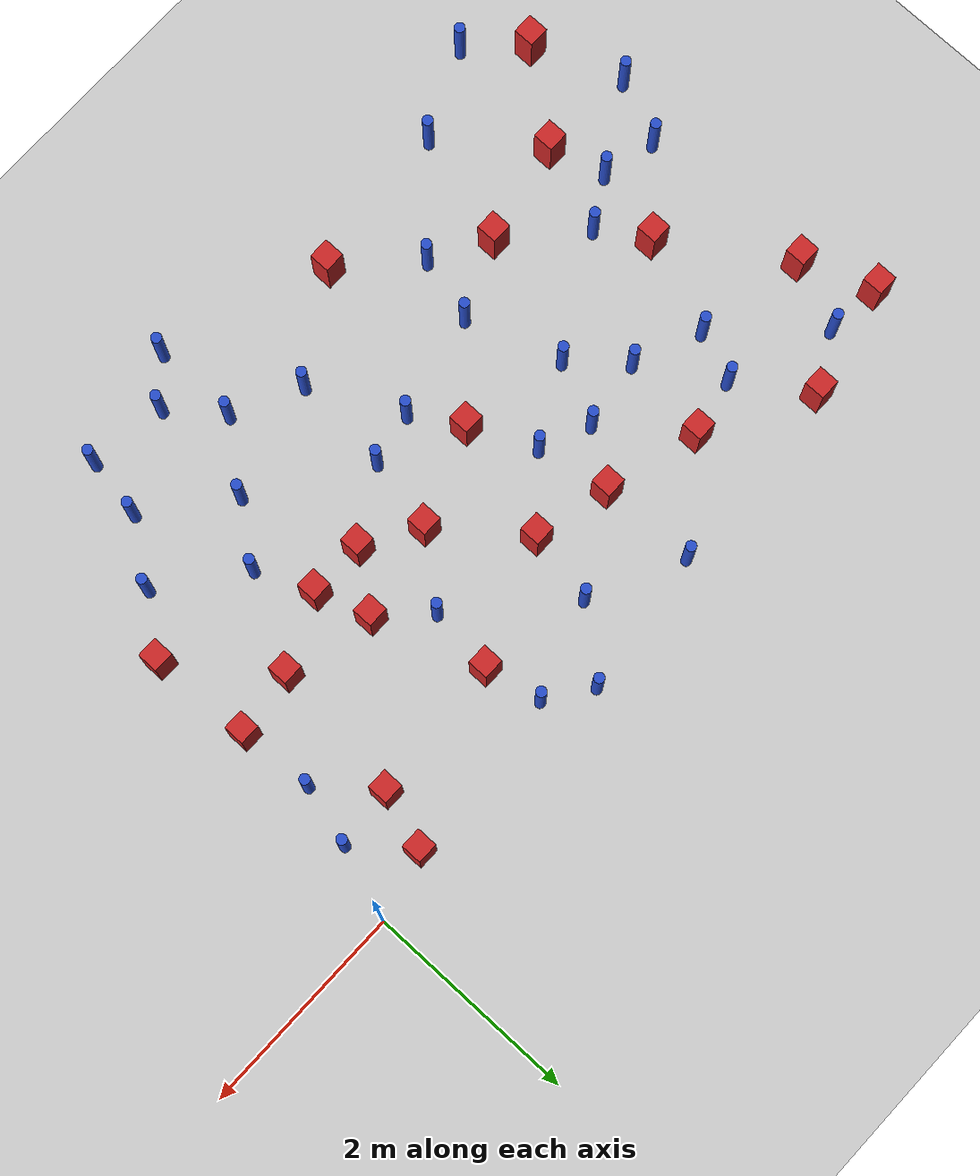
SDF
<sdf version="1.6">
 <world name="default">
  <model name="ground_plane">
   <static>1</static>
   <link name="link">
    <collision name="collision">
     <geometry><plane><normal>0 0 1</normal><size>100 100</size></plane></geometry>
     <surface><friction><ode><mu>100</mu><mu2>50</mu2></ode></friction></surface>
    </collision>
    <visual name="visual">
     <cast_shadows>0</cast_shadows>
     <geometry><plane><normal>0 0 1</normal><size>100 100</size></plane></geometry>
     <material>
      <ambient>1.0 1.0 1.0 1.0</ambient>
      <diffuse>0.8 0.8 0.8 1.0</diffuse>
      <specular>0.01 0.01 0.01 1.000000</specular>
     </material>
    </visual>
   </link>
  </model>
  <model name="square_post_obstacle19">
   <static>true</static>
   <pose>-4.93362820988 -0.872511746495 -6.11067671241e-07 -5.50515727128e-06 -8.79689657224e-07 2.37013304536e-05</pose>
   <link name="link">
    <pose>0 0 0.25 0 -0 0</pose>
    <inertial>
     <mass>100</mass>
     <inertia>
      <ixx>0.166667</ixx>
      <ixy>0</ixy>
      <ixz>0</ixz>
      <iyy>0.166667</iyy>
      <iyz>0</iyz>
      <izz>0.166667</izz>
     </inertia>
    </inertial>
    <collision name="collision"><geometry><box><size>.2 .2 .5</size></box></geometry></collision>
    <visual name="visual">
     <geometry><box><size>.2 .2 .5</size></box></geometry>
     <material>
      <script><name>Gazebo/Red</name><uri>file://media/materials/scripts/gazebo.material</uri></script>
     </material>
    </visual>
   </link>
  </model>
  <model name="pole_obstacle13">
   <static>true</static>
   <pose>-0.396146122416 -1.24049954833 -9.47619616065e-06 5.49618799738e-07 2.3631041406e-07 -1.550905348e-07</pose>
   <link name="link">
    <pose>0 0 0.3 0 -0 0</pose>
    <inertial>
     <mass>1</mass>
     <inertia><ixx>0.145833</ixx><ixy>0</ixy><ixz>0</ixz><iyy>0.145833</iyy><iyz>0</iyz><izz>0.125</izz></inertia>
    </inertial>
    <collision name="collision">
     <geometry><cylinder><radius>0.05</radius><length>.6</length></cylinder></geometry>
    </collision>
    <visual name="visual">
     <geometry><cylinder><radius>0.05</radius><length>.6</length></cylinder></geometry>
     <material>
      <script><name>Gazebo/Blue</name><uri>file://media/materials/scripts/gazebo.material</uri></script>
     </material>
    </visual>
   </link>
  </model>
  <model name="pole_obstacle14">
   <static>true</static>
   <pose>-0.698512760537 -3.43095846177 -9.47619616065e-06 5.49618799737e-07 2.36310414066e-07 -1.55090534797e-07</pose>
   <link name="link">
    <pose>0 0 0.3 0 -0 0</pose>
    <inertial>
     <mass>1</mass>
     <inertia><ixx>0.145833</ixx><ixy>0</ixy><ixz>0</ixz><iyy>0.145833</iyy><iyz>0</iyz><izz>0.125</izz></inertia>
    </inertial>
    <collision name="collision">
     <geometry><cylinder><radius>0.05</radius><length>.6</length></cylinder></geometry>
    </collision>
    <visual name="visual">
     <geometry><cylinder><radius>0.05</radius><length>.6</length></cylinder></geometry>
     <material>
      <script><name>Gazebo/Blue</name><uri>file://media/materials/scripts/gazebo.material</uri></script>
     </material>
    </visual>
   </link>
  </model>
  <model name="pole_obstacle15">
   <static>true</static>
   <pose>-5.48142437463 -0.9869373852 -9.47619616065e-06 5.49618799738e-07 2.36310414063e-07 -1.55090534799e-07</pose>
   <link name="link">
    <pose>0 0 0.3 0 -0 0</pose>
    <inertial>
     <mass>1</mass>
     <inertia><ixx>0.145833</ixx><ixy>0</ixy><ixz>0</ixz><iyy>0.145833</iyy><iyz>0</iyz><izz>0.125</izz></inertia>
    </inertial>
    <collision name="collision">
     <geometry><cylinder><radius>0.05</radius><length>.6</length></cylinder></geometry>
    </collision>
    <visual name="visual">
     <geometry><cylinder><radius>0.05</radius><length>.6</length></cylinder></geometry>
     <material>
      <script><name>Gazebo/Blue</name><uri>file://media/materials/scripts/gazebo.material</uri></script>
     </material>
    </visual>
   </link>
  </model>
  <model name="square_post_obstacle30">
   <static>true</static>
   <pose>-2.16073642551 -0.819398530157 -6.11067671241e-07 -5.50515727128e-06 -8.79689657224e-07 2.37013304536e-05</pose>
   <link name="link">
    <pose>0 0 0.25 0 -0 0</pose>
    <inertial>
     <mass>100</mass>
     <inertia>
      <ixx>0.166667</ixx>
      <ixy>0</ixy>
      <ixz>0</ixz>
      <iyy>0.166667</iyy>
      <iyz>0</iyz>
      <izz>0.166667</izz>
     </inertia>
    </inertial>
    <collision name="collision"><geometry><box><size>.2 .2 .5</size></box></geometry></collision>
    <visual name="visual">
     <geometry><box><size>.2 .2 .5</size></box></geometry>
     <material>
      <script><name>Gazebo/Red</name><uri>file://media/materials/scripts/gazebo.material</uri></script>
     </material>
    </visual>
   </link>
  </model>
  <model name="pole_obstacle24">
   <static>true</static>
   <pose>-3.35250689096 -2.85249493824 -9.47619616065e-06 5.49618799737e-07 2.36310414051e-07 -1.55090534807e-07</pose>
   <link name="link">
    <pose>0 0 0.3 0 -0 0</pose>
    <inertial>
     <mass>1</mass>
     <inertia><ixx>0.145833</ixx><ixy>0</ixy><ixz>0</ixz><iyy>0.145833</iyy><iyz>0</iyz><izz>0.125</izz></inertia>
    </inertial>
    <collision name="collision">
     <geometry><cylinder><radius>0.05</radius><length>.6</length></cylinder></geometry>
    </collision>
    <visual name="visual">
     <geometry><cylinder><radius>0.05</radius><length>.6</length></cylinder></geometry>
     <material>
      <script><name>Gazebo/Blue</name><uri>file://media/materials/scripts/gazebo.material</uri></script>
     </material>
    </visual>
   </link>
  </model>
  <model name="pole_obstacle29">
   <static>true</static>
   <pose>-5.66671919872 -1.45315627058 -9.47619616065e-06 5.49618799738e-07 2.36310414071e-07 -1.55090534796e-07</pose>
   <link name="link">
    <pose>0 0 0.3 0 -0 0</pose>
    <inertial>
     <mass>1</mass>
     <inertia><ixx>0.145833</ixx><ixy>0</ixy><ixz>0</ixz><iyy>0.145833</iyy><iyz>0</iyz><izz>0.125</izz></inertia>
    </inertial>
    <collision name="collision">
     <geometry><cylinder><radius>0.05</radius><length>.6</length></cylinder></geometry>
    </collision>
    <visual name="visual">
     <geometry><cylinder><radius>0.05</radius><length>.6</length></cylinder></geometry>
     <material>
      <script><name>Gazebo/Blue</name><uri>file://media/materials/scripts/gazebo.material</uri></script>
     </material>
    </visual>
   </link>
  </model>
  <model name="square_post_obstacle36">
   <static>true</static>
   <pose>-0.362242348549 -1.94912138401 -6.11067671241e-07 -5.50515727128e-06 -8.79689657224e-07 2.37013304536e-05</pose>
   <link name="link">
    <pose>0 0 0.25 0 -0 0</pose>
    <inertial>
     <mass>100</mass>
     <inertia>
      <ixx>0.166667</ixx>
      <ixy>0</ixy>
      <ixz>0</ixz>
      <iyy>0.166667</iyy>
      <iyz>0</iyz>
      <izz>0.166667</izz>
     </inertia>
    </inertial>
    <collision name="collision"><geometry><box><size>.2 .2 .5</size></box></geometry></collision>
    <visual name="visual">
     <geometry><box><size>.2 .2 .5</size></box></geometry>
     <material>
      <script><name>Gazebo/Red</name><uri>file://media/materials/scripts/gazebo.material</uri></script>
     </material>
    </visual>
   </link>
  </model>
  <model name="pole_obstacle42">
   <static>true</static>
   <pose>-3.90662161664 -1.79307997855 -9.47619616065e-06 5.49618799737e-07 2.36310414072e-07 -1.55090534793e-07</pose>
   <link name="link">
    <pose>0 0 0.3 0 -0 0</pose>
    <inertial>
     <mass>1</mass>
     <inertia><ixx>0.145833</ixx><ixy>0</ixy><ixz>0</ixz><iyy>0.145833</iyy><iyz>0</iyz><izz>0.125</izz></inertia>
    </inertial>
    <collision name="collision">
     <geometry><cylinder><radius>0.05</radius><length>.6</length></cylinder></geometry>
    </collision>
    <visual name="visual">
     <geometry><cylinder><radius>0.05</radius><length>.6</length></cylinder></geometry>
     <material>
      <script><name>Gazebo/Blue</name><uri>file://media/materials/scripts/gazebo.material</uri></script>
     </material>
    </visual>
   </link>
  </model>
  <model name="square_post_obstacle40">
   <static>true</static>
   <pose>-3.30761113644 -1.27494614513 -6.11067671241e-07 -5.50515727128e-06 -8.79689657224e-07 2.37013304536e-05</pose>
   <link name="link">
    <pose>0 0 0.25 0 -0 0</pose>
    <inertial>
     <mass>100</mass>
     <inertia>
      <ixx>0.166667</ixx>
      <ixy>0</ixy>
      <ixz>0</ixz>
      <iyy>0.166667</iyy>
      <iyz>0</iyz>
      <izz>0.166667</izz>
     </inertia>
    </inertial>
    <collision name="collision"><geometry><box><size>.2 .2 .5</size></box></geometry></collision>
    <visual name="visual">
     <geometry><box><size>.2 .2 .5</size></box></geometry>
     <material>
      <script><name>Gazebo/Red</name><uri>file://media/materials/scripts/gazebo.material</uri></script>
     </material>
    </visual>
   </link>
  </model>
  <model name="square_post_obstacle42">
   <static>true</static>
   <pose>-6.01508320525 -3.59150461057 -6.11067671241e-07 -5.50515727128e-06 -8.79689657224e-07 2.37013304536e-05</pose>
   <link name="link">
    <pose>0 0 0.25 0 -0 0</pose>
    <inertial>
     <mass>100</mass>
     <inertia>
      <ixx>0.166667</ixx>
      <ixy>0</ixy>
      <ixz>0</ixz>
      <iyy>0.166667</iyy>
      <iyz>0</iyz>
      <izz>0.166667</izz>
     </inertia>
    </inertial>
    <collision name="collision"><geometry><box><size>.2 .2 .5</size></box></geometry></collision>
    <visual name="visual">
     <geometry><box><size>.2 .2 .5</size></box></geometry>
     <material>
      <script><name>Gazebo/Red</name><uri>file://media/materials/scripts/gazebo.material</uri></script>
     </material>
    </visual>
   </link>
  </model>
  <model name="pole_obstacle47">
   <static>true</static>
   <pose>-1.09407281129 -3.99064784551 -9.47619616065e-06 5.49618799737e-07 2.36310414067e-07 -1.55090534795e-07</pose>
   <link name="link">
    <pose>0 0 0.3 0 -0 0</pose>
    <inertial>
     <mass>1</mass>
     <inertia><ixx>0.145833</ixx><ixy>0</ixy><ixz>0</ixz><iyy>0.145833</iyy><iyz>0</iyz><izz>0.125</izz></inertia>
    </inertial>
    <collision name="collision">
     <geometry><cylinder><radius>0.05</radius><length>.6</length></cylinder></geometry>
    </collision>
    <visual name="visual">
     <geometry><cylinder><radius>0.05</radius><length>.6</length></cylinder></geometry>
     <material>
      <script><name>Gazebo/Blue</name><uri>file://media/materials/scripts/gazebo.material</uri></script>
     </material>
    </visual>
   </link>
  </model>
  <model name="pole_obstacle49">
   <static>true</static>
   <pose>-2.86092002899 -2.74612797711 -9.47619616065e-06 5.49618799737e-07 2.36310414051e-07 -1.55090534807e-07</pose>
   <link name="link">
    <pose>0 0 0.3 0 -0 0</pose>
    <inertial>
     <mass>1</mass>
     <inertia><ixx>0.145833</ixx><ixy>0</ixy><ixz>0</ixz><iyy>0.145833</iyy><iyz>0</iyz><izz>0.125</izz></inertia>
    </inertial>
    <collision name="collision">
     <geometry><cylinder><radius>0.05</radius><length>.6</length></cylinder></geometry>
    </collision>
    <visual name="visual">
     <geometry><cylinder><radius>0.05</radius><length>.6</length></cylinder></geometry>
     <material>
      <script><name>Gazebo/Blue</name><uri>file://media/materials/scripts/gazebo.material</uri></script>
     </material>
    </visual>
   </link>
  </model>
  <model name="pole_obstacle50">
   <static>true</static>
   <pose>-2.30832612158 -4.81870005928 -9.47619616065e-06 5.49618799738e-07 2.3631041406e-07 -1.55090534801e-07</pose>
   <link name="link">
    <pose>0 0 0.3 0 -0 0</pose>
    <inertial>
     <mass>1</mass>
     <inertia><ixx>0.145833</ixx><ixy>0</ixy><ixz>0</ixz><iyy>0.145833</iyy><iyz>0</iyz><izz>0.125</izz></inertia>
    </inertial>
    <collision name="collision">
     <geometry><cylinder><radius>0.05</radius><length>.6</length></cylinder></geometry>
    </collision>
    <visual name="visual">
     <geometry><cylinder><radius>0.05</radius><length>.6</length></cylinder></geometry>
     <material>
      <script><name>Gazebo/Blue</name><uri>file://media/materials/scripts/gazebo.material</uri></script>
     </material>
    </visual>
   </link>
  </model>
  <model name="pole_obstacle52">
   <static>true</static>
   <pose>-4.63186885841 -2.17984591372 -9.47619616065e-06 5.49618799738e-07 2.36310414051e-07 -1.55090534805e-07</pose>
   <link name="link">
    <pose>0 0 0.3 0 -0 0</pose>
    <inertial>
     <mass>1</mass>
     <inertia><ixx>0.145833</ixx><ixy>0</ixy><ixz>0</ixz><iyy>0.145833</iyy><iyz>0</iyz><izz>0.125</izz></inertia>
    </inertial>
    <collision name="collision">
     <geometry><cylinder><radius>0.05</radius><length>.6</length></cylinder></geometry>
    </collision>
    <visual name="visual">
     <geometry><cylinder><radius>0.05</radius><length>.6</length></cylinder></geometry>
     <material>
      <script><name>Gazebo/Blue</name><uri>file://media/materials/scripts/gazebo.material</uri></script>
     </material>
    </visual>
   </link>
  </model>
  <model name="square_post_obstacle57">
   <static>true</static>
   <pose>-6.72206157524 -1.25438495782 -6.11067671241e-07 -5.50515727128e-06 -8.79689657224e-07 2.37013304536e-05</pose>
   <link name="link">
    <pose>0 0 0.25 0 -0 0</pose>
    <inertial>
     <mass>100</mass>
     <inertia>
      <ixx>0.166667</ixx>
      <ixy>0</ixy>
      <ixz>0</ixz>
      <iyy>0.166667</iyy>
      <iyz>0</iyz>
      <izz>0.166667</izz>
     </inertia>
    </inertial>
    <collision name="collision"><geometry><box><size>.2 .2 .5</size></box></geometry></collision>
    <visual name="visual">
     <geometry><box><size>.2 .2 .5</size></box></geometry>
     <material>
      <script><name>Gazebo/Red</name><uri>file://media/materials/scripts/gazebo.material</uri></script>
     </material>
    </visual>
   </link>
  </model>
  <model name="square_post_obstacle58">
   <static>true</static>
   <pose>-5.997366483 -2.3497886294 -6.11067671241e-07 -5.50515727128e-06 -8.79689657224e-07 2.37013304536e-05</pose>
   <link name="link">
    <pose>0 0 0.25 0 -0 0</pose>
    <inertial>
     <mass>100</mass>
     <inertia>
      <ixx>0.166667</ixx>
      <ixy>0</ixy>
      <ixz>0</ixz>
      <iyy>0.166667</iyy>
      <iyz>0</iyz>
      <izz>0.166667</izz>
     </inertia>
    </inertial>
    <collision name="collision"><geometry><box><size>.2 .2 .5</size></box></geometry></collision>
    <visual name="visual">
     <geometry><box><size>.2 .2 .5</size></box></geometry>
     <material>
      <script><name>Gazebo/Red</name><uri>file://media/materials/scripts/gazebo.material</uri></script>
     </material>
    </visual>
   </link>
  </model>
  <model name="pole_obstacle57">
   <static>true</static>
   <pose>-2.9355474856 -3.6898126294 -9.47619616065e-06 5.49618799737e-07 2.36310414051e-07 -1.55090534807e-07</pose>
   <link name="link">
    <pose>0 0 0.3 0 -0 0</pose>
    <inertial>
     <mass>1</mass>
     <inertia><ixx>0.145833</ixx><ixy>0</ixy><ixz>0</ixz><iyy>0.145833</iyy><iyz>0</iyz><izz>0.125</izz></inertia>
    </inertial>
    <collision name="collision">
     <geometry><cylinder><radius>0.05</radius><length>.6</length></cylinder></geometry>
    </collision>
    <visual name="visual">
     <geometry><cylinder><radius>0.05</radius><length>.6</length></cylinder></geometry>
     <material>
      <script><name>Gazebo/Blue</name><uri>file://media/materials/scripts/gazebo.material</uri></script>
     </material>
    </visual>
   </link>
  </model>
  <model name="pole_obstacle60">
   <static>true</static>
   <pose>-4.05939755529 -0.19430048013 -9.47619616065e-06 5.49618799738e-07 2.36310414072e-07 -1.55090534795e-07</pose>
   <link name="link">
    <pose>0 0 0.3 0 -0 0</pose>
    <inertial>
     <mass>1</mass>
     <inertia><ixx>0.145833</ixx><ixy>0</ixy><ixz>0</ixz><iyy>0.145833</iyy><iyz>0</iyz><izz>0.125</izz></inertia>
    </inertial>
    <collision name="collision">
     <geometry><cylinder><radius>0.05</radius><length>.6</length></cylinder></geometry>
    </collision>
    <visual name="visual">
     <geometry><cylinder><radius>0.05</radius><length>.6</length></cylinder></geometry>
     <material>
      <script><name>Gazebo/Blue</name><uri>file://media/materials/scripts/gazebo.material</uri></script>
     </material>
    </visual>
   </link>
  </model>
  <model name="pole_obstacle76">
   <static>true</static>
   <pose>-2.69109121535 -0.00879763315694 -9.47619616065e-06 5.49618799738e-07 2.36310414071e-07 -1.55090534795e-07</pose>
   <link name="link">
    <pose>0 0 0.3 0 -0 0</pose>
    <inertial>
     <mass>1</mass>
     <inertia><ixx>0.145833</ixx><ixy>0</ixy><ixz>0</ixz><iyy>0.145833</iyy><iyz>0</iyz><izz>0.125</izz></inertia>
    </inertial>
    <collision name="collision">
     <geometry><cylinder><radius>0.05</radius><length>.6</length></cylinder></geometry>
    </collision>
    <visual name="visual">
     <geometry><cylinder><radius>0.05</radius><length>.6</length></cylinder></geometry>
     <material>
      <script><name>Gazebo/Blue</name><uri>file://media/materials/scripts/gazebo.material</uri></script>
     </material>
    </visual>
   </link>
  </model>
  <model name="pole_obstacle80">
   <static>true</static>
   <pose>-6.46013460716 -0.627744825493 -9.47619616065e-06 5.49618799737e-07 2.36310414061e-07 -1.550905348e-07</pose>
   <link name="link">
    <pose>0 0 0.3 0 -0 0</pose>
    <inertial>
     <mass>1</mass>
     <inertia><ixx>0.145833</ixx><ixy>0</ixy><ixz>0</ixz><iyy>0.145833</iyy><iyz>0</iyz><izz>0.125</izz></inertia>
    </inertial>
    <collision name="collision">
     <geometry><cylinder><radius>0.05</radius><length>.6</length></cylinder></geometry>
    </collision>
    <visual name="visual">
     <geometry><cylinder><radius>0.05</radius><length>.6</length></cylinder></geometry>
     <material>
      <script><name>Gazebo/Blue</name><uri>file://media/materials/scripts/gazebo.material</uri></script>
     </material>
    </visual>
   </link>
  </model>
  <model name="pole_obstacle81">
   <static>true</static>
   <pose>-6.18446554364 -4.83628113966 -9.47619616065e-06 5.49618799737e-07 2.36310414037e-07 -1.55090534814e-07</pose>
   <link name="link">
    <pose>0 0 0.3 0 -0 0</pose>
    <inertial>
     <mass>1</mass>
     <inertia><ixx>0.145833</ixx><ixy>0</ixy><ixz>0</ixz><iyy>0.145833</iyy><iyz>0</iyz><izz>0.125</izz></inertia>
    </inertial>
    <collision name="collision">
     <geometry><cylinder><radius>0.05</radius><length>.6</length></cylinder></geometry>
    </collision>
    <visual name="visual">
     <geometry><cylinder><radius>0.05</radius><length>.6</length></cylinder></geometry>
     <material>
      <script><name>Gazebo/Blue</name><uri>file://media/materials/scripts/gazebo.material</uri></script>
     </material>
    </visual>
   </link>
  </model>
  <model name="pole_obstacle96">
   <static>true</static>
   <pose>-1.43814285354 -2.88085548472 -9.47619616065e-06 5.49618799737e-07 2.36310414062e-07 -1.55090534798e-07</pose>
   <link name="link">
    <pose>0 0 0.3 0 -0 0</pose>
    <inertial>
     <mass>1</mass>
     <inertia><ixx>0.145833</ixx><ixy>0</ixy><ixz>0</ixz><iyy>0.145833</iyy><iyz>0</iyz><izz>0.125</izz></inertia>
    </inertial>
    <collision name="collision">
     <geometry><cylinder><radius>0.05</radius><length>.6</length></cylinder></geometry>
    </collision>
    <visual name="visual">
     <geometry><cylinder><radius>0.05</radius><length>.6</length></cylinder></geometry>
     <material>
      <script><name>Gazebo/Blue</name><uri>file://media/materials/scripts/gazebo.material</uri></script>
     </material>
    </visual>
   </link>
  </model>
  <model name="square_post_obstacle84">
   <static>true</static>
   <pose>-5.92736534509 -0.337526868708 -6.11067671241e-07 -5.50515727128e-06 -8.79689657224e-07 2.37013304536e-05</pose>
   <link name="link">
    <pose>0 0 0.25 0 -0 0</pose>
    <inertial>
     <mass>100</mass>
     <inertia>
      <ixx>0.166667</ixx>
      <ixy>0</ixy>
      <ixz>0</ixz>
      <iyy>0.166667</iyy>
      <iyz>0</iyz>
      <izz>0.166667</izz>
     </inertia>
    </inertial>
    <collision name="collision"><geometry><box><size>.2 .2 .5</size></box></geometry></collision>
    <visual name="visual">
     <geometry><box><size>.2 .2 .5</size></box></geometry>
     <material>
      <script><name>Gazebo/Red</name><uri>file://media/materials/scripts/gazebo.material</uri></script>
     </material>
    </visual>
   </link>
  </model>
  <model name="square_post_obstacle92">
   <static>true</static>
   <pose>-2.19716612827 -2.34406139069 -6.11067671241e-07 -5.50515727128e-06 -8.79689657224e-07 2.37013304536e-05</pose>
   <link name="link">
    <pose>0 0 0.25 0 -0 0</pose>
    <inertial>
     <mass>100</mass>
     <inertia>
      <ixx>0.166667</ixx>
      <ixy>0</ixy>
      <ixz>0</ixz>
      <iyy>0.166667</iyy>
      <iyz>0</iyz>
      <izz>0.166667</izz>
     </inertia>
    </inertial>
    <collision name="collision"><geometry><box><size>.2 .2 .5</size></box></geometry></collision>
    <visual name="visual">
     <geometry><box><size>.2 .2 .5</size></box></geometry>
     <material>
      <script><name>Gazebo/Red</name><uri>file://media/materials/scripts/gazebo.material</uri></script>
     </material>
    </visual>
   </link>
  </model>
  <model name="pole_obstacle108">
   <static>true</static>
   <pose>-5.72134854834 -2.79830093828 -9.47619616065e-06 5.49618799738e-07 2.36310414051e-07 -1.55090534805e-07</pose>
   <link name="link">
    <pose>0 0 0.3 0 -0 0</pose>
    <inertial>
     <mass>1</mass>
     <inertia><ixx>0.145833</ixx><ixy>0</ixy><ixz>0</ixz><iyy>0.145833</iyy><iyz>0</iyz><izz>0.125</izz></inertia>
    </inertial>
    <collision name="collision">
     <geometry><cylinder><radius>0.05</radius><length>.6</length></cylinder></geometry>
    </collision>
    <visual name="visual">
     <geometry><cylinder><radius>0.05</radius><length>.6</length></cylinder></geometry>
     <material>
      <script><name>Gazebo/Blue</name><uri>file://media/materials/scripts/gazebo.material</uri></script>
     </material>
    </visual>
   </link>
  </model>
  <model name="square_post_obstacle99">
   <static>true</static>
   <pose>-0.644150187044 -0.172655602866 -6.11067671241e-07 -5.50515727128e-06 -8.79689657224e-07 2.37013304536e-05</pose>
   <link name="link">
    <pose>0 0 0.25 0 -0 0</pose>
    <inertial>
     <mass>100</mass>
     <inertia>
      <ixx>0.166667</ixx>
      <ixy>0</ixy>
      <ixz>0</ixz>
      <iyy>0.166667</iyy>
      <iyz>0</iyz>
      <izz>0.166667</izz>
     </inertia>
    </inertial>
    <collision name="collision"><geometry><box><size>.2 .2 .5</size></box></geometry></collision>
    <visual name="visual">
     <geometry><box><size>.2 .2 .5</size></box></geometry>
     <material>
      <script><name>Gazebo/Red</name><uri>file://media/materials/scripts/gazebo.material</uri></script>
     </material>
    </visual>
   </link>
  </model>
  <model name="square_post_obstacle110">
   <static>true</static>
   <pose>-0.314955461651 -2.91150345609 -6.11067671241e-07 -5.50515727128e-06 -8.79689657224e-07 2.37013304536e-05</pose>
   <link name="link">
    <pose>0 0 0.25 0 -0 0</pose>
    <inertial>
     <mass>100</mass>
     <inertia>
      <ixx>0.166667</ixx>
      <ixy>0</ixy>
      <ixz>0</ixz>
      <iyy>0.166667</iyy>
      <iyz>0</iyz>
      <izz>0.166667</izz>
     </inertia>
    </inertial>
    <collision name="collision"><geometry><box><size>.2 .2 .5</size></box></geometry></collision>
    <visual name="visual">
     <geometry><box><size>.2 .2 .5</size></box></geometry>
     <material>
      <script><name>Gazebo/Red</name><uri>file://media/materials/scripts/gazebo.material</uri></script>
     </material>
    </visual>
   </link>
  </model>
  <model name="pole_obstacle120">
   <static>true</static>
   <pose>-4.5109446323 -3.68251824588 -9.47619616065e-06 5.49618799738e-07 2.36310414051e-07 -1.55090534805e-07</pose>
   <link name="link">
    <pose>0 0 0.3 0 -0 0</pose>
    <inertial>
     <mass>1</mass>
     <inertia><ixx>0.145833</ixx><ixy>0</ixy><ixz>0</ixz><iyy>0.145833</iyy><iyz>0</iyz><izz>0.125</izz></inertia>
    </inertial>
    <collision name="collision">
     <geometry><cylinder><radius>0.05</radius><length>.6</length></cylinder></geometry>
    </collision>
    <visual name="visual">
     <geometry><cylinder><radius>0.05</radius><length>.6</length></cylinder></geometry>
     <material>
      <script><name>Gazebo/Blue</name><uri>file://media/materials/scripts/gazebo.material</uri></script>
     </material>
    </visual>
   </link>
  </model>
  <model name="pole_obstacle123">
   <static>true</static>
   <pose>-1.8360350835 -3.40844959307 -9.47619616065e-06 5.49618799737e-07 2.36310414062e-07 -1.55090534798e-07</pose>
   <link name="link">
    <pose>0 0 0.3 0 -0 0</pose>
    <inertial>
     <mass>1</mass>
     <inertia><ixx>0.145833</ixx><ixy>0</ixy><ixz>0</ixz><iyy>0.145833</iyy><iyz>0</iyz><izz>0.125</izz></inertia>
    </inertial>
    <collision name="collision">
     <geometry><cylinder><radius>0.05</radius><length>.6</length></cylinder></geometry>
    </collision>
    <visual name="visual">
     <geometry><cylinder><radius>0.05</radius><length>.6</length></cylinder></geometry>
     <material>
      <script><name>Gazebo/Blue</name><uri>file://media/materials/scripts/gazebo.material</uri></script>
     </material>
    </visual>
   </link>
  </model>
  <model name="pole_obstacle125">
   <static>true</static>
   <pose>-2.23624089737 -1.45191084861 -9.47619616065e-06 5.49618799737e-07 2.36310414072e-07 -1.55090534793e-07</pose>
   <link name="link">
    <pose>0 0 0.3 0 -0 0</pose>
    <inertial>
     <mass>1</mass>
     <inertia><ixx>0.145833</ixx><ixy>0</ixy><ixz>0</ixz><iyy>0.145833</iyy><iyz>0</iyz><izz>0.125</izz></inertia>
    </inertial>
    <collision name="collision">
     <geometry><cylinder><radius>0.05</radius><length>.6</length></cylinder></geometry>
    </collision>
    <visual name="visual">
     <geometry><cylinder><radius>0.05</radius><length>.6</length></cylinder></geometry>
     <material>
      <script><name>Gazebo/Blue</name><uri>file://media/materials/scripts/gazebo.material</uri></script>
     </material>
    </visual>
   </link>
  </model>
  <model name="pole_obstacle130">
   <static>true</static>
   <pose>-5.0309690848 -1.70759019364 -9.47619616065e-06 5.49618799738e-07 2.36310414071e-07 -1.55090534796e-07</pose>
   <link name="link">
    <pose>0 0 0.3 0 -0 0</pose>
    <inertial>
     <mass>1</mass>
     <inertia><ixx>0.145833</ixx><ixy>0</ixy><ixz>0</ixz><iyy>0.145833</iyy><iyz>0</iyz><izz>0.125</izz></inertia>
    </inertial>
    <collision name="collision">
     <geometry><cylinder><radius>0.05</radius><length>.6</length></cylinder></geometry>
    </collision>
    <visual name="visual">
     <geometry><cylinder><radius>0.05</radius><length>.6</length></cylinder></geometry>
     <material>
      <script><name>Gazebo/Blue</name><uri>file://media/materials/scripts/gazebo.material</uri></script>
     </material>
    </visual>
   </link>
  </model>
  <model name="square_post_obstacle116">
   <static>true</static>
   <pose>-0.977681841493 -2.03318080546 -6.11067671241e-07 -5.50515727128e-06 -8.79689657224e-07 2.37013304536e-05</pose>
   <link name="link">
    <pose>0 0 0.25 0 -0 0</pose>
    <inertial>
     <mass>100</mass>
     <inertia>
      <ixx>0.166667</ixx>
      <ixy>0</ixy>
      <ixz>0</ixz>
      <iyy>0.166667</iyy>
      <iyz>0</iyz>
      <izz>0.166667</izz>
     </inertia>
    </inertial>
    <collision name="collision"><geometry><box><size>.2 .2 .5</size></box></geometry></collision>
    <visual name="visual">
     <geometry><box><size>.2 .2 .5</size></box></geometry>
     <material>
      <script><name>Gazebo/Red</name><uri>file://media/materials/scripts/gazebo.material</uri></script>
     </material>
    </visual>
   </link>
  </model>
  <model name="square_post_obstacle119">
   <static>true</static>
   <pose>-3.86894430674 -4.27685898608 -6.11067671241e-07 -5.50515727128e-06 -8.79689657224e-07 2.37013304536e-05</pose>
   <link name="link">
    <pose>0 0 0.25 0 -0 0</pose>
    <inertial>
     <mass>100</mass>
     <inertia>
      <ixx>0.166667</ixx>
      <ixy>0</ixy>
      <ixz>0</ixz>
      <iyy>0.166667</iyy>
      <iyz>0</iyz>
      <izz>0.166667</izz>
     </inertia>
    </inertial>
    <collision name="collision"><geometry><box><size>.2 .2 .5</size></box></geometry></collision>
    <visual name="visual">
     <geometry><box><size>.2 .2 .5</size></box></geometry>
     <material>
      <script><name>Gazebo/Red</name><uri>file://media/materials/scripts/gazebo.material</uri></script>
     </material>
    </visual>
   </link>
  </model>
  <model name="pole_obstacle140">
   <static>true</static>
   <pose>-0.240335463539 -0.670646375624 -9.47619616065e-06 5.49618799737e-07 2.36310414051e-07 -1.55090534806e-07</pose>
   <link name="link">
    <pose>0 0 0.3 0 -0 0</pose>
    <inertial>
     <mass>1</mass>
     <inertia><ixx>0.145833</ixx><ixy>0</ixy><ixz>0</ixz><iyy>0.145833</iyy><iyz>0</iyz><izz>0.125</izz></inertia>
    </inertial>
    <collision name="collision">
     <geometry><cylinder><radius>0.05</radius><length>.6</length></cylinder></geometry>
    </collision>
    <visual name="visual">
     <geometry><cylinder><radius>0.05</radius><length>.6</length></cylinder></geometry>
     <material>
      <script><name>Gazebo/Blue</name><uri>file://media/materials/scripts/gazebo.material</uri></script>
     </material>
    </visual>
   </link>
  </model>
  <model name="square_post_obstacle134">
   <static>true</static>
   <pose>-1.66048103618 -2.34268729818 -6.11067671241e-07 -5.50515727128e-06 -8.79689657224e-07 2.37013304536e-05</pose>
   <link name="link">
    <pose>0 0 0.25 0 -0 0</pose>
    <inertial>
     <mass>100</mass>
     <inertia>
      <ixx>0.166667</ixx>
      <ixy>0</ixy>
      <ixz>0</ixz>
      <iyy>0.166667</iyy>
      <iyz>0</iyz>
      <izz>0.166667</izz>
     </inertia>
    </inertial>
    <collision name="collision"><geometry><box><size>.2 .2 .5</size></box></geometry></collision>
    <visual name="visual">
     <geometry><box><size>.2 .2 .5</size></box></geometry>
     <material>
      <script><name>Gazebo/Red</name><uri>file://media/materials/scripts/gazebo.material</uri></script>
     </material>
    </visual>
   </link>
  </model>
  <model name="square_post_obstacle149">
   <static>true</static>
   <pose>-5.0539890043 -3.38427931754 -6.11067671241e-07 -5.50515727128e-06 -8.79689657224e-07 2.37013304536e-05</pose>
   <link name="link">
    <pose>0 0 0.25 0 -0 0</pose>
    <inertial>
     <mass>100</mass>
     <inertia>
      <ixx>0.166667</ixx>
      <ixy>0</ixy>
      <ixz>0</ixz>
      <iyy>0.166667</iyy>
      <iyz>0</iyz>
      <izz>0.166667</izz>
     </inertia>
    </inertial>
    <collision name="collision"><geometry><box><size>.2 .2 .5</size></box></geometry></collision>
    <visual name="visual">
     <geometry><box><size>.2 .2 .5</size></box></geometry>
     <material>
      <script><name>Gazebo/Red</name><uri>file://media/materials/scripts/gazebo.material</uri></script>
     </material>
    </visual>
   </link>
  </model>
  <model name="square_post_obstacle158">
   <static>true</static>
   <pose>-6.62801793424 -4.38366135092 -6.11067671241e-07 -5.50515727128e-06 -8.79689657224e-07 2.37013304536e-05</pose>
   <link name="link">
    <pose>0 0 0.25 0 -0 0</pose>
    <inertial>
     <mass>100</mass>
     <inertia>
      <ixx>0.166667</ixx>
      <ixy>0</ixy>
      <ixz>0</ixz>
      <iyy>0.166667</iyy>
      <iyz>0</iyz>
      <izz>0.166667</izz>
     </inertia>
    </inertial>
    <collision name="collision"><geometry><box><size>.2 .2 .5</size></box></geometry></collision>
    <visual name="visual">
     <geometry><box><size>.2 .2 .5</size></box></geometry>
     <material>
      <script><name>Gazebo/Red</name><uri>file://media/materials/scripts/gazebo.material</uri></script>
     </material>
    </visual>
   </link>
  </model>
  <model name="square_post_obstacle164">
   <static>true</static>
   <pose>-2.71350484715 -2.04375798731 -6.11067671241e-07 -5.50515727128e-06 -8.79689657224e-07 2.37013304536e-05</pose>
   <link name="link">
    <pose>0 0 0.25 0 -0 0</pose>
    <inertial>
     <mass>100</mass>
     <inertia>
      <ixx>0.166667</ixx>
      <ixy>0</ixy>
      <ixz>0</ixz>
      <iyy>0.166667</iyy>
      <iyz>0</iyz>
      <izz>0.166667</izz>
     </inertia>
    </inertial>
    <collision name="collision"><geometry><box><size>.2 .2 .5</size></box></geometry></collision>
    <visual name="visual">
     <geometry><box><size>.2 .2 .5</size></box></geometry>
     <material>
      <script><name>Gazebo/Red</name><uri>file://media/materials/scripts/gazebo.material</uri></script>
     </material>
    </visual>
   </link>
  </model>
  <model name="square_post_obstacle167">
   <static>true</static>
   <pose>-4.03088919962 -1.11024183121 -6.11067671241e-07 -5.50515727128e-06 -8.79689657224e-07 2.37013304536e-05</pose>
   <link name="link">
    <pose>0 0 0.25 0 -0 0</pose>
    <inertial>
     <mass>100</mass>
     <inertia>
      <ixx>0.166667</ixx>
      <ixy>0</ixy>
      <ixz>0</ixz>
      <iyy>0.166667</iyy>
      <iyz>0</iyz>
      <izz>0.166667</izz>
     </inertia>
    </inertial>
    <collision name="collision"><geometry><box><size>.2 .2 .5</size></box></geometry></collision>
    <visual name="visual">
     <geometry><box><size>.2 .2 .5</size></box></geometry>
     <material>
      <script><name>Gazebo/Red</name><uri>file://media/materials/scripts/gazebo.material</uri></script>
     </material>
    </visual>
   </link>
  </model>
  <model name="pole_obstacle179">
   <static>true</static>
   <pose>-1.93348229342 -4.46693754423 -9.47619616065e-06 5.49618799737e-07 2.36310414061e-07 -1.550905348e-07</pose>
   <link name="link">
    <pose>0 0 0.3 0 -0 0</pose>
    <inertial>
     <mass>1</mass>
     <inertia><ixx>0.145833</ixx><ixy>0</ixy><ixz>0</ixz><iyy>0.145833</iyy><iyz>0</iyz><izz>0.125</izz></inertia>
    </inertial>
    <collision name="collision">
     <geometry><cylinder><radius>0.05</radius><length>.6</length></cylinder></geometry>
    </collision>
    <visual name="visual">
     <geometry><cylinder><radius>0.05</radius><length>.6</length></cylinder></geometry>
     <material>
      <script><name>Gazebo/Blue</name><uri>file://media/materials/scripts/gazebo.material</uri></script>
     </material>
    </visual>
   </link>
  </model>
  <model name="square_post_obstacle171">
   <static>true</static>
   <pose>-0.814753165554 -0.71906786907 -6.11067671241e-07 -5.50515727128e-06 -8.79689657224e-07 2.37013304536e-05</pose>
   <link name="link">
    <pose>0 0 0.25 0 -0 0</pose>
    <inertial>
     <mass>100</mass>
     <inertia>
      <ixx>0.166667</ixx>
      <ixy>0</ixy>
      <ixz>0</ixz>
      <iyy>0.166667</iyy>
      <iyz>0</iyz>
      <izz>0.166667</izz>
     </inertia>
    </inertial>
    <collision name="collision"><geometry><box><size>.2 .2 .5</size></box></geometry></collision>
    <visual name="visual">
     <geometry><box><size>.2 .2 .5</size></box></geometry>
     <material>
      <script><name>Gazebo/Red</name><uri>file://media/materials/scripts/gazebo.material</uri></script>
     </material>
    </visual>
   </link>
  </model>
  <model name="pole_obstacle188">
   <static>true</static>
   <pose>-5.35439311606 -4.45180997624 -9.47619616065e-06 5.49618799737e-07 2.36310414037e-07 -1.55090534814e-07</pose>
   <link name="link">
    <pose>0 0 0.3 0 -0 0</pose>
    <inertial>
     <mass>1</mass>
     <inertia><ixx>0.145833</ixx><ixy>0</ixy><ixz>0</ixz><iyy>0.145833</iyy><iyz>0</iyz><izz>0.125</izz></inertia>
    </inertial>
    <collision name="collision">
     <geometry><cylinder><radius>0.05</radius><length>.6</length></cylinder></geometry>
    </collision>
    <visual name="visual">
     <geometry><cylinder><radius>0.05</radius><length>.6</length></cylinder></geometry>
     <material>
      <script><name>Gazebo/Blue</name><uri>file://media/materials/scripts/gazebo.material</uri></script>
     </material>
    </visual>
   </link>
  </model>
  <model name="pole_obstacle189">
   <static>true</static>
   <pose>-4.37976890749 -1.60239218682 -9.47619616065e-06 5.49618799738e-07 2.36310414071e-07 -1.55090534796e-07</pose>
   <link name="link">
    <pose>0 0 0.3 0 -0 0</pose>
    <inertial>
     <mass>1</mass>
     <inertia><ixx>0.145833</ixx><ixy>0</ixy><ixz>0</ixz><iyy>0.145833</iyy><iyz>0</iyz><izz>0.125</izz></inertia>
    </inertial>
    <collision name="collision">
     <geometry><cylinder><radius>0.05</radius><length>.6</length></cylinder></geometry>
    </collision>
    <visual name="visual">
     <geometry><cylinder><radius>0.05</radius><length>.6</length></cylinder></geometry>
     <material>
      <script><name>Gazebo/Blue</name><uri>file://media/materials/scripts/gazebo.material</uri></script>
     </material>
    </visual>
   </link>
  </model>
  <model name="square_post_obstacle187">
   <static>true</static>
   <pose>-3.62082023689 -2.39165068524 -6.11067671241e-07 -5.50515727128e-06 -8.79689657224e-07 2.37013304536e-05</pose>
   <link name="link">
    <pose>0 0 0.25 0 -0 0</pose>
    <inertial>
     <mass>100</mass>
     <inertia>
      <ixx>0.166667</ixx>
      <ixy>0</ixy>
      <ixz>0</ixz>
      <iyy>0.166667</iyy>
      <iyz>0</iyz>
      <izz>0.166667</izz>
     </inertia>
    </inertial>
    <collision name="collision"><geometry><box><size>.2 .2 .5</size></box></geometry></collision>
    <visual name="visual">
     <geometry><box><size>.2 .2 .5</size></box></geometry>
     <material>
      <script><name>Gazebo/Red</name><uri>file://media/materials/scripts/gazebo.material</uri></script>
     </material>
    </visual>
   </link>
  </model>
  <model name="pole_obstacle194">
   <static>true</static>
   <pose>-1.19374315822 -4.55734444454 -9.47619616065e-06 5.49618799737e-07 2.36310414061e-07 -1.550905348e-07</pose>
   <link name="link">
    <pose>0 0 0.3 0 -0 0</pose>
    <inertial>
     <mass>1</mass>
     <inertia><ixx>0.145833</ixx><ixy>0</ixy><ixz>0</ixz><iyy>0.145833</iyy><iyz>0</iyz><izz>0.125</izz></inertia>
    </inertial>
    <collision name="collision">
     <geometry><cylinder><radius>0.05</radius><length>.6</length></cylinder></geometry>
    </collision>
    <visual name="visual">
     <geometry><cylinder><radius>0.05</radius><length>.6</length></cylinder></geometry>
     <material>
      <script><name>Gazebo/Blue</name><uri>file://media/materials/scripts/gazebo.material</uri></script>
     </material>
    </visual>
   </link>
  </model>
  <model name="pole_obstacle199">
   <static>true</static>
   <pose>-4.34318213121 -3.07672558937 -9.47619616065e-06 5.49618799738e-07 2.36310414051e-07 -1.55090534805e-07</pose>
   <link name="link">
    <pose>0 0 0.3 0 -0 0</pose>
    <inertial>
     <mass>1</mass>
     <inertia><ixx>0.145833</ixx><ixy>0</ixy><ixz>0</ixz><iyy>0.145833</iyy><iyz>0</iyz><izz>0.125</izz></inertia>
    </inertial>
    <collision name="collision">
     <geometry><cylinder><radius>0.05</radius><length>.6</length></cylinder></geometry>
    </collision>
    <visual name="visual">
     <geometry><cylinder><radius>0.05</radius><length>.6</length></cylinder></geometry>
     <material>
      <script><name>Gazebo/Blue</name><uri>file://media/materials/scripts/gazebo.material</uri></script>
     </material>
    </visual>
   </link>
  </model>
  <model name="pole_obstacle204">
   <static>true</static>
   <pose>-6.17256909149 -3.06664612007 -9.47619616065e-06 5.49618799738e-07 2.36310414051e-07 -1.55090534805e-07</pose>
   <link name="link">
    <pose>0 0 0.3 0 -0 0</pose>
    <inertial>
     <mass>1</mass>
     <inertia><ixx>0.145833</ixx><ixy>0</ixy><ixz>0</ixz><iyy>0.145833</iyy><iyz>0</iyz><izz>0.125</izz></inertia>
    </inertial>
    <collision name="collision">
     <geometry><cylinder><radius>0.05</radius><length>.6</length></cylinder></geometry>
    </collision>
    <visual name="visual">
     <geometry><cylinder><radius>0.05</radius><length>.6</length></cylinder></geometry>
     <material>
      <script><name>Gazebo/Blue</name><uri>file://media/materials/scripts/gazebo.material</uri></script>
     </material>
    </visual>
   </link>
  </model>
  <model name="pole_obstacle206">
   <static>true</static>
   <pose>-2.29411056978 -3.99316297507 -9.47619616065e-06 5.49618799737e-07 2.36310414046e-07 -1.5509053481e-07</pose>
   <link name="link">
    <pose>0 0 0.3 0 -0 0</pose>
    <inertial>
     <mass>1</mass>
     <inertia><ixx>0.145833</ixx><ixy>0</ixy><ixz>0</ixz><iyy>0.145833</iyy><iyz>0</iyz><izz>0.125</izz></inertia>
    </inertial>
    <collision name="collision">
     <geometry><cylinder><radius>0.05</radius><length>.6</length></cylinder></geometry>
    </collision>
    <visual name="visual">
     <geometry><cylinder><radius>0.05</radius><length>.6</length></cylinder></geometry>
     <material>
      <script><name>Gazebo/Blue</name><uri>file://media/materials/scripts/gazebo.material</uri></script>
     </material>
    </visual>
   </link>
  </model>
  <model name="pole_obstacle211">
   <static>true</static>
   <pose>-6.94922396012 -3.5402236644 -9.47619616065e-06 5.49618799738e-07 2.36310414051e-07 -1.55090534805e-07</pose>
   <link name="link">
    <pose>0 0 0.3 0 -0 0</pose>
    <inertial>
     <mass>1</mass>
     <inertia><ixx>0.145833</ixx><ixy>0</ixy><ixz>0</ixz><iyy>0.145833</iyy><iyz>0</iyz><izz>0.125</izz></inertia>
    </inertial>
    <collision name="collision">
     <geometry><cylinder><radius>0.05</radius><length>.6</length></cylinder></geometry>
    </collision>
    <visual name="visual">
     <geometry><cylinder><radius>0.05</radius><length>.6</length></cylinder></geometry>
     <material>
      <script><name>Gazebo/Blue</name><uri>file://media/materials/scripts/gazebo.material</uri></script>
     </material>
    </visual>
   </link>
  </model>
  <model name="pole_obstacle213">
   <static>true</static>
   <pose>-6.69309638569 -2.95484187701 -9.47619616065e-06 5.49618799738e-07 2.36310414051e-07 -1.55090534805e-07</pose>
   <link name="link">
    <pose>0 0 0.3 0 -0 0</pose>
    <inertial>
     <mass>1</mass>
     <inertia><ixx>0.145833</ixx><ixy>0</ixy><ixz>0</ixz><iyy>0.145833</iyy><iyz>0</iyz><izz>0.125</izz></inertia>
    </inertial>
    <collision name="collision">
     <geometry><cylinder><radius>0.05</radius><length>.6</length></cylinder></geometry>
    </collision>
    <visual name="visual">
     <geometry><cylinder><radius>0.05</radius><length>.6</length></cylinder></geometry>
     <material>
      <script><name>Gazebo/Blue</name><uri>file://media/materials/scripts/gazebo.material</uri></script>
     </material>
    </visual>
   </link>
  </model>
  <model name="pole_obstacle217">
   <static>true</static>
   <pose>-2.27542571424 -0.287017760296 -9.4761961606e-06 5.49618799729e-07 2.36310414007e-07 -1.55090534821e-07</pose>
   <link name="link">
    <pose>0 0 0.3 0 -0 0</pose>
    <inertial>
     <mass>1</mass>
     <inertia><ixx>0.145833</ixx><ixy>0</ixy><ixz>0</ixz><iyy>0.145833</iyy><iyz>0</iyz><izz>0.125</izz></inertia>
    </inertial>
    <collision name="collision">
     <geometry><cylinder><radius>0.05</radius><length>.6</length></cylinder></geometry>
    </collision>
    <visual name="visual">
     <geometry><cylinder><radius>0.05</radius><length>.6</length></cylinder></geometry>
     <material>
      <script><name>Gazebo/Blue</name><uri>file://media/materials/scripts/gazebo.material</uri></script>
     </material>
    </visual>
   </link>
  </model>
  <model name="pole_obstacle218">
   <static>true</static>
   <pose>-3.18419650404 -0.60284099243 -9.47619616065e-06 5.49618799738e-07 2.36310414075e-07 -1.55090534793e-07</pose>
   <link name="link">
    <pose>0 0 0.3 0 -0 0</pose>
    <inertial>
     <mass>1</mass>
     <inertia><ixx>0.145833</ixx><ixy>0</ixy><ixz>0</ixz><iyy>0.145833</iyy><iyz>0</iyz><izz>0.125</izz></inertia>
    </inertial>
    <collision name="collision">
     <geometry><cylinder><radius>0.05</radius><length>.6</length></cylinder></geometry>
    </collision>
    <visual name="visual">
     <geometry><cylinder><radius>0.05</radius><length>.6</length></cylinder></geometry>
     <material>
      <script><name>Gazebo/Blue</name><uri>file://media/materials/scripts/gazebo.material</uri></script>
     </material>
    </visual>
   </link>
  </model>
  <model name="square_post_obstacle205">
   <static>true</static>
   <pose>-6.97938958646 -0.583749097953 -6.11067671241e-07 -5.50515727128e-06 -8.79689657224e-07 2.37013304536e-05</pose>
   <link name="link">
    <pose>0 0 0.25 0 -0 0</pose>
    <inertial>
     <mass>100</mass>
     <inertia>
      <ixx>0.166667</ixx>
      <ixy>0</ixy>
      <ixz>0</ixz>
      <iyy>0.166667</iyy>
      <iyz>0</iyz>
      <izz>0.166667</izz>
     </inertia>
    </inertial>
    <collision name="collision"><geometry><box><size>.2 .2 .5</size></box></geometry></collision>
    <visual name="visual">
     <geometry><box><size>.2 .2 .5</size></box></geometry>
     <material>
      <script><name>Gazebo/Red</name><uri>file://media/materials/scripts/gazebo.material</uri></script>
     </material>
    </visual>
   </link>
  </model>
  <model name="square_post_obstacle209">
   <static>true</static>
   <pose>-1.82435755768 -1.84294296865 -6.11067671241e-07 -5.50515727128e-06 -8.79689657224e-07 2.37013304536e-05</pose>
   <link name="link">
    <pose>0 0 0.25 0 -0 0</pose>
    <inertial>
     <mass>100</mass>
     <inertia>
      <ixx>0.166667</ixx>
      <ixy>0</ixy>
      <ixz>0</ixz>
      <iyy>0.166667</iyy>
      <iyz>0</iyz>
      <izz>0.166667</izz>
     </inertia>
    </inertial>
    <collision name="collision"><geometry><box><size>.2 .2 .5</size></box></geometry></collision>
    <visual name="visual">
     <geometry><box><size>.2 .2 .5</size></box></geometry>
     <material>
      <script><name>Gazebo/Red</name><uri>file://media/materials/scripts/gazebo.material</uri></script>
     </material>
    </visual>
   </link>
  </model>
 </world>
</sdf>
